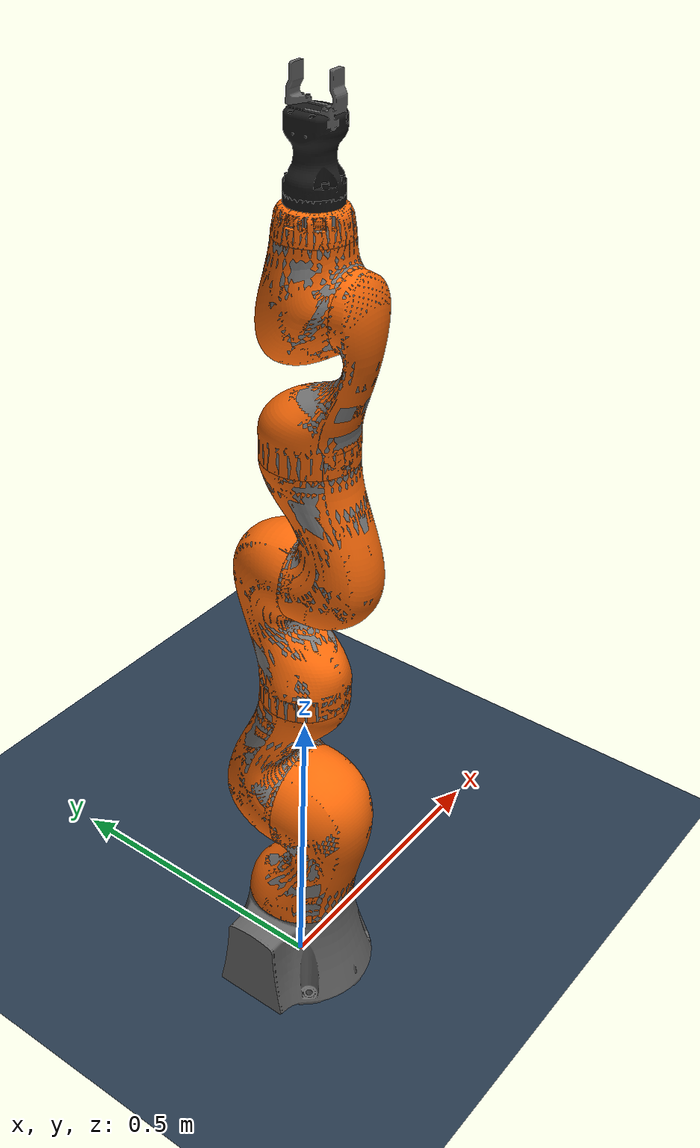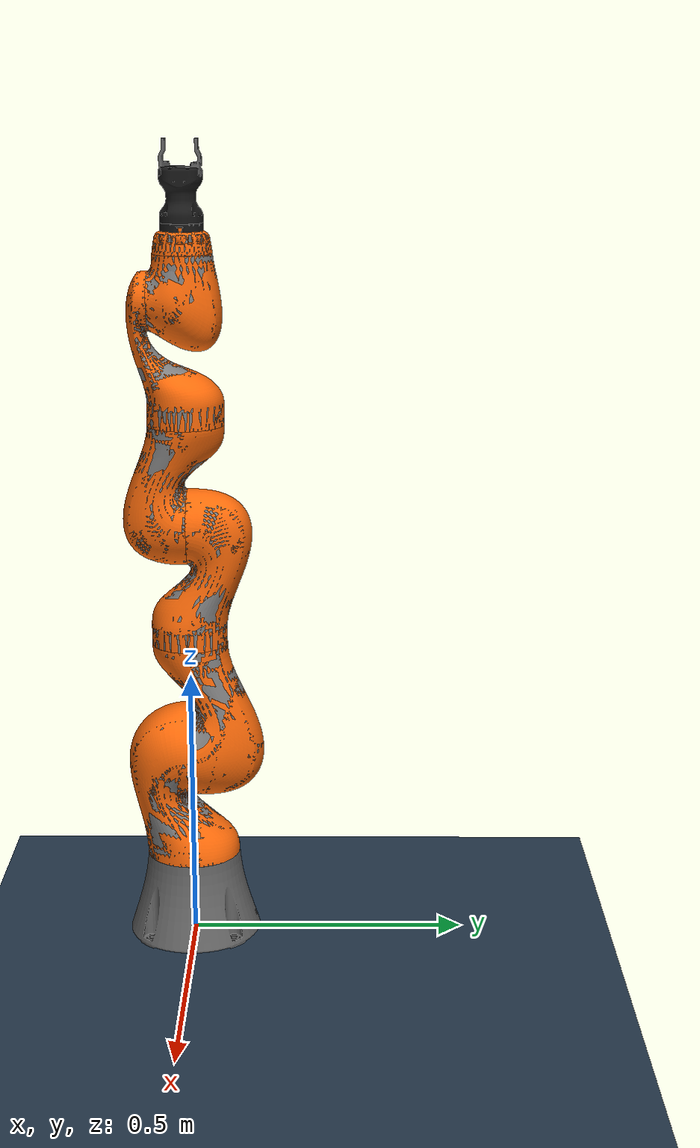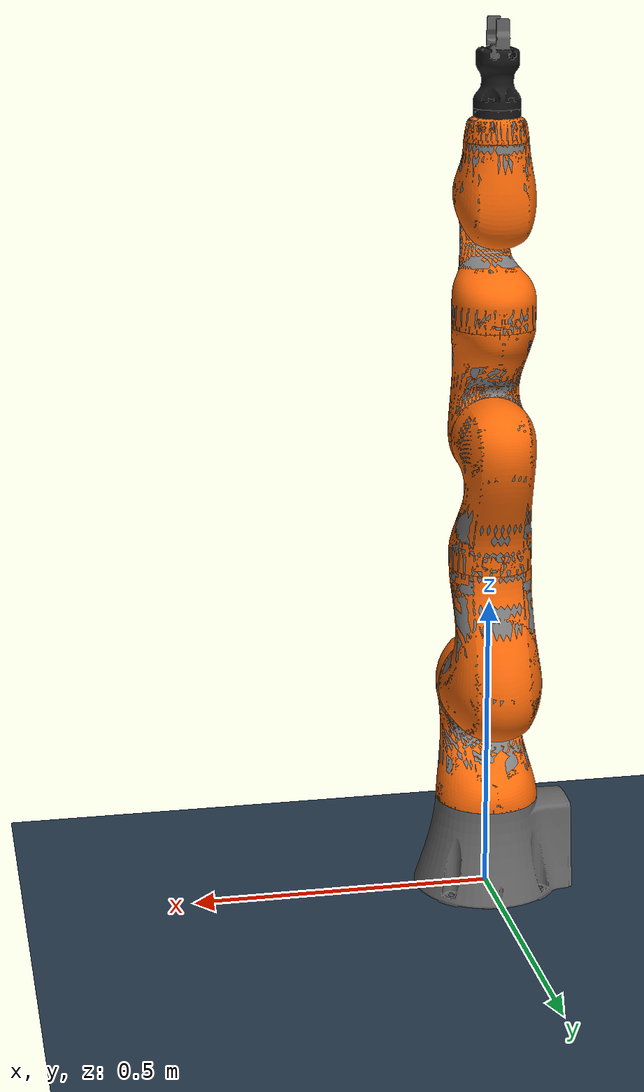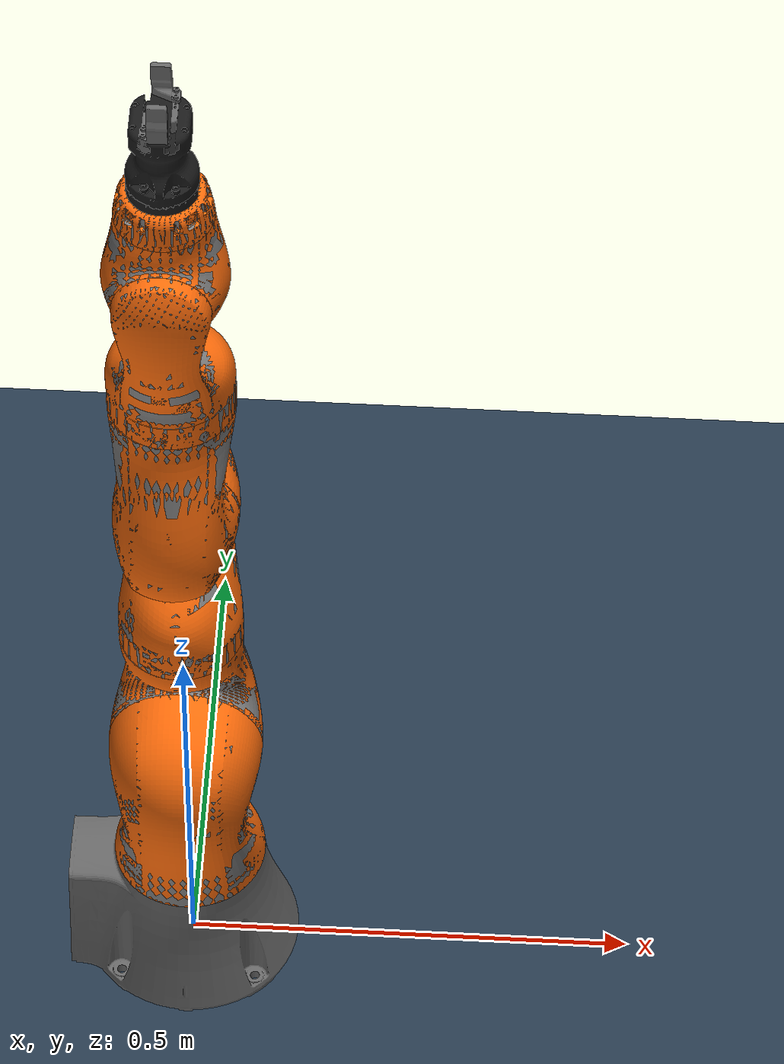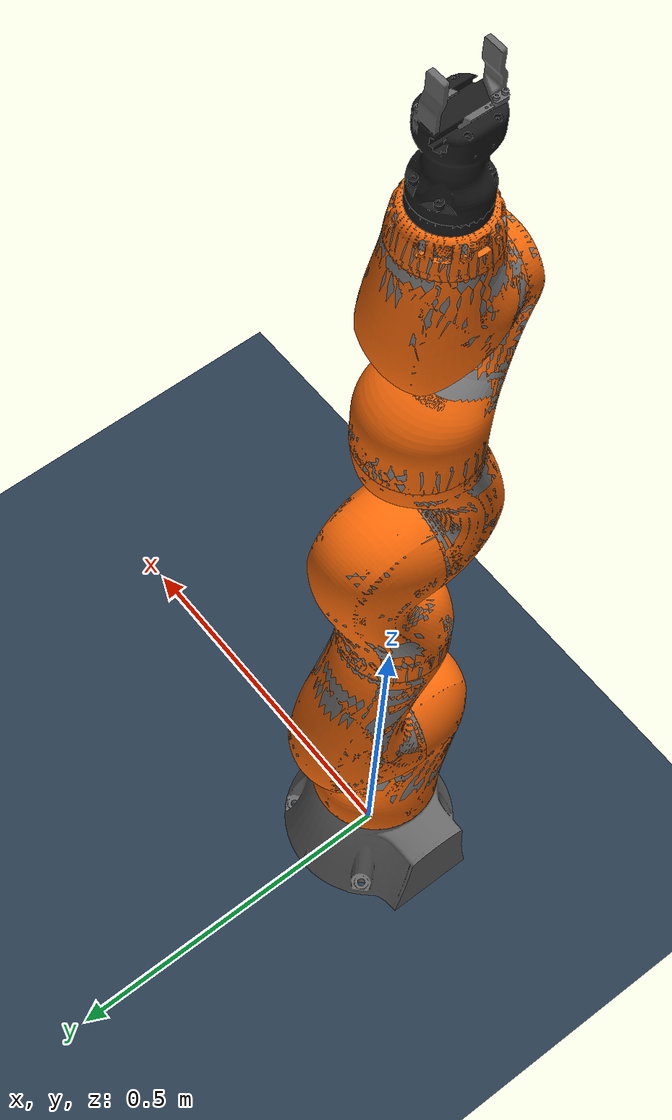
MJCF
<mujoco model="iiwa_gripper">
    <compiler angle="radian" meshdir="" inertiagrouprange="0 0"/>
    <option impratio="20" cone="elliptic" density="1.2" viscosity="0.00002"/>
    <size nconmax="5000" njmax="5000"/>

    <!-- iiwa assets-->
    <include file="assets/assets.xml"/>

    <!-- arena -->
    <include file="../common_arena/simple_plane.xml"/>

    <!-- iiwa body xml-->
    <include file="assets/iiwa14.xml"/>

</mujoco>

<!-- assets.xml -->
<mujocoinclude>
    <asset>
        <mesh name="iiwa_link_0" file="/dataset/meshes/iiwa14/collision/link_0.stl" scale="1 1 1" />
        <mesh name="iiwa_link_1" file="/dataset/meshes/iiwa14/collision/link_1.stl" scale="1 1 1" />
        <mesh name="iiwa_link_2" file="/dataset/meshes/iiwa14/collision/link_2.stl" scale="1 1 1" />
        <mesh name="iiwa_link_3" file="/dataset/meshes/iiwa14/collision/link_3.stl" scale="1 1 1" />
        <mesh name="iiwa_link_4" file="/dataset/meshes/iiwa14/collision/link_4.stl" scale="1 1 1" />
        <mesh name="iiwa_link_5" file="/dataset/meshes/iiwa14/collision/link_5.stl" scale="1 1 1" />
        <mesh name="iiwa_link_6" file="/dataset/meshes/iiwa14/collision/link_6.stl" scale="1 1 1" />
        <mesh name="iiwa_link_7" file="/dataset/meshes/iiwa14/collision/link_7.stl" scale="1 1 1" />
        <mesh name="iiwa_link_0_vis" file="/dataset/meshes/iiwa14/visual/link_0.stl" scale="1 1 1" />
        <mesh name="iiwa_link_1_vis" file="/dataset/meshes/iiwa14/visual/link_1.stl" scale="1 1 1" />
        <mesh name="iiwa_link_2_vis" file="/dataset/meshes/iiwa14/visual/link_2.stl" scale="1 1 1" />
        <mesh name="iiwa_link_3_vis" file="/dataset/meshes/iiwa14/visual/link_3.stl" scale="1 1 1" />
        <mesh name="iiwa_link_4_vis" file="/dataset/meshes/iiwa14/visual/link_4.stl" scale="1 1 1" />
        <mesh name="iiwa_link_5_vis" file="/dataset/meshes/iiwa14/visual/link_5.stl" scale="1 1 1" />
        <mesh name="iiwa_link_6_vis" file="/dataset/meshes/iiwa14/visual/link_6.stl" scale="1 1 1" />
        <mesh name="iiwa_link_7_vis" file="/dataset/meshes/iiwa14/visual/link_7.stl" scale="1 1 1" />

        <mesh name="hande" file="/dataset/meshes/hande/hande.stl" />
        <mesh name="coupler" file="/dataset/meshes/hande/coupler.stl" />
        <mesh name="right_finger" file="/dataset/meshes/hande/finger_1.stl" />
        <mesh name="left_finger" file="/dataset/meshes/hande/finger_2.stl" />
    </asset>
</mujocoinclude>

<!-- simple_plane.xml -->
<mujoco model="empty_arena">
    <asset>
        <texture name="texplane" type="2d" builtin="checker" rgb1=".2 .3 .4" rgb2=".1 0.15 0.2" width="512" height="512"/>
        <material name="MatGnd" reflectance="0.5" texture="texplane" texrepeat="1 1" texuniform="true"/>
        <texture type="skybox" builtin="gradient" rgb1="1 1 1" rgb2=".6 .8 1" width="256" height="256"/>
    </asset>

    <worldbody>
        <light directional="false" diffuse=".8 .8 .8" specular="0.3 0.3 0.3" pos="1  1 3" dir="-1 -1 -3"/>
        <geom name="ground" pos="0 0 0" size="5 5 10" material="MatGnd" type="plane" contype="1" conaffinity="1"/>
        <light diffuse=".8 .8 .8" dir="0 -.15 -1" directional="false" pos="1 1 4.0" specular="0.3 0.3 0.3" castshadow="false"/>
        <light diffuse=".8 .8 .8" dir="0 -.15 -1" directional="false" pos="-3. -3. 4.0" specular="0.3 0.3 0.3" castshadow="false"/>
        <!-- front view -->
        <camera mode="fixed" name="frontview" pos="1.6 0 1.45" quat="0.56 0.43 0.43 0.56"/>
        <!-- bird view -->
        <camera mode="fixed" name="birdview" pos="-0.2 0 3.0" quat="0.7071 0 0 0.7071"/>
        <!-- agent view -->
        <camera mode="fixed" name="agentview" pos="1.0 0 1.75" quat="0.653 0.271 0.271 0.653"/>
    </worldbody>
</mujoco>

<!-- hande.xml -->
<mujocoinclude>

    <body name="hande">
        <geom name="hande_coupler" type="mesh" conaffinity="0" group="1" rgba="0.1 0.1 0.1 1" mesh="coupler" />
        <geom name="hande_base" type="mesh" conaffinity="0" group="1" rgba="0.1 0.1 0.1 1" mesh="hande" />
        <body name="hande_left_finger" pos="0 0 0.099">
            <inertial pos="0.02262 -0.00759 0.00738" quat="0.871952 0.0369732 -0.211073 0.440205" mass="0.03804" diaginertia="1.22763e-05 1.22763e-05 1.22763e-05" />
            <joint name="hande_left_finger_joint" class="hande_left_finger" pos="0 0 0" axis="1 0 0" />
            <geom type="mesh" contype="0" conaffinity="0" group="1" rgba="0.4 0.4 0.4 1" mesh="left_finger" />
        </body>
        <body name="hande_right_finger" pos="0 0 0.099">
            <inertial pos="-0.02262 0.00759 0.00738" quat="0.871952 -0.0369732 0.211073 0.440205" mass="0.03804" diaginertia="1.22763e-05 1.22763e-05 1.22763e-05" />
            <joint name="hande_right_finger_joint" class="hande_right_finger" pos="0 0 0" axis="-1 0 0" />
            <geom type="mesh" contype="0" conaffinity="0" group="1" rgba="0.4 0.4 0.4 1" mesh="right_finger" />
        </body>
    </body>

</mujocoinclude>

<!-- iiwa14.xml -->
<mujocoinclude>
    <option cone="elliptic" impratio="10"/>

    <default>
        <default class="hande">
            <default class="hande_right_finger">
                <joint type="slide" range="0 0.025" actuatorfrcrange="-100 100" />
            </default>
            <default class="hande_left_finger">
                <joint type="slide" range="0 0.025" actuatorfrcrange="-100 100" />
            </default>
        </default>
    </default>

    <visual>
        <global azimuth="120" elevation="-20" />
        <headlight diffuse="0.6 0.6 0.6" specular="0 0 0" />
        <rgba haze="0.15 0.25 0.35 1" />
    </visual>

    <statistic meansize="0.1" extent="1" center="4 0 0" />

    <worldbody>
        <body name="iiwa_world" pos="0 0 0">
            <!-- robot view -->
            <camera mode="fixed" name="iiwa_robotview" pos="1.0 0 0.4" quat="0.653 0.271 0.271 0.653"/>
            <inertial diaginertia="0 0 0" mass="0" pos="0 0 0"/>
            <body name="iiwa_link_0" pos="0 0 0">
                <inertial pos="0 0 0" mass="5" fullinertia="0.05 0.06 0.03 0 0 0" />
                <geom type="mesh" contype="0" conaffinity="0" group="1" mesh="iiwa_link_0_vis" name="iiwa_link_0_visual" rgba="0.4 0.4 0.4 1.0" />
                <geom type="mesh" group="0" mesh="iiwa_link_0" name="iiwa_link_0_collision"/>
                <body name="iiwa_link_1" pos="0 0 0.1575">
                    <inertial pos="0 -0.03 0.12" mass="4" fullinertia="0.1 0.09 0.02 0 0 0" />
                    <joint name="iiwa_joint_1" pos="0 0 0" axis="0 0 1" limited="true" range="-2.9670597283903604 2.9670597283903604" damping="0.5"/>
                    <geom type="mesh" contype="0" conaffinity="0" group="1" mesh="iiwa_link_1_vis" name="iiwa_link_1_visual" rgba="1.0 0.4235294117647059 0.0392156862745098 1.0" />
                    <geom type="mesh" group="0" mesh="iiwa_link_1" name="iiwa_link_1_collision"/>
                    <body name="iiwa_link_2" pos="0 0 0.2025" quat="0 0 0.7071068 0.7071068">
                        <inertial pos="0.0003 0.059 0.042" mass="4" fullinertia="0.05 0.018 0.044 0 0 0" />
                        <joint name="iiwa_joint_2" pos="0 0 0" axis="0 0 1" limited="true" range="-2.0943951023931953 2.0943951023931953" damping="0.5"/>
                        <geom type="mesh" contype="0" conaffinity="0" group="1" mesh="iiwa_link_2_vis" name="iiwa_link_2_visual" rgba="1.0 0.4235294117647059 0.0392156862745098 1.0" />
                        <geom type="mesh" group="0" mesh="iiwa_link_2" name="iiwa_link_2_collision"/>
                        <body name="iiwa_link_3" pos="0 0.2045 0" quat="0 0 0.7071068 0.7071068">
                            <inertial pos="0 0.03 0.13" mass="3" fullinertia="0.08 0.075 0.01 0 0 0" />
                            <joint name="iiwa_joint_3" pos="0 0 0" axis="0 0 1" limited="true" range="-2.9670597283903604 2.9670597283903604" damping="0.5"/>
                            <geom type="mesh" contype="0" conaffinity="0" group="1" mesh="iiwa_link_3_vis" name="iiwa_link_3_visual" rgba="1.0 0.4235294117647059 0.0392156862745098 1.0" />
                            <geom type="mesh" group="0" mesh="iiwa_link_3" name="iiwa_link_3_collision"/>
                            <body name="iiwa_link_4" pos="0 0 0.2155" quat="0.7071068 0.7071068 0 0">
                                <inertial pos="0 0.067 0.034" mass="2.7" fullinertia="0.03 0.01 0.029 0 0 0" />
                                <joint name="iiwa_joint_4" pos="0 0 0" axis="0 0 1" limited="true" range="-2.0943951023931953 2.0943951023931953" damping="0.5"/>
                                <geom type="mesh" contype="0" conaffinity="0" group="1" mesh="iiwa_link_4_vis" name="iiwa_link_4_visual" rgba="1.0 0.4235294117647059 0.0392156862745098 1.0" />
                                <geom type="mesh" group="0" mesh="iiwa_link_4" name="iiwa_link_4_collision"/>
                                <body name="iiwa_link_5" pos="0 0.1845 0" quat="0 0 0.7071068 0.7071068">
                                    <inertial pos="0.0001 0.021 0.076" mass="1.7" fullinertia="0.02 0.018 0.005 0 0 0" />
                                    <joint name="iiwa_joint_5" pos="0 0 0" axis="0 0 1" limited="true" range="-2.9670597283903604 2.9670597283903604" damping="0.5"/>
                                    <geom type="mesh" contype="0" conaffinity="0" group="1" mesh="iiwa_link_5_vis" name="iiwa_link_5_visual" rgba="1.0 0.4235294117647059 0.0392156862745098 1.0" />
                                    <geom type="mesh" group="0" mesh="iiwa_link_5" name="iiwa_link_5_collision"/>
                                    <body name="iiwa_link_6" pos="0 0 0.2155" quat="0.7071068 0.7071068 0 0">
                                        <inertial pos="0 0.0006 0.0004" mass="1.8" fullinertia="0.005 0.0036 0.0047 0 0 0" />
                                        <joint name="iiwa_joint_6" pos="0 0 0" axis="0 0 1" limited="true" range="-2.0943951023931953 2.0943951023931953" damping="0.5"/>
                                        <geom type="mesh" contype="0" conaffinity="0" group="1" mesh="iiwa_link_6_vis" name="iiwa_link_6_visual" rgba="1.0 0.4235294117647059 0.0392156862745098 1.0" />
                                        <geom type="mesh" group="0" mesh="iiwa_link_6" name="iiwa_link_6_collision"/>
                                        <body name="iiwa_link_7" pos="0 0.081 0" quat="0 0 0.7071068 0.7071068">
                                            <inertial pos="0 0 0.02" mass="0.3" fullinertia="0.001 0.001 0.001 0 0 0" />
                                            <joint name="iiwa_joint_7" pos="0 0 0" axis="0 0 1" limited="true" range="-3.0543261909900763 3.0543261909900763" damping="0.5"/>
                                            <geom type="mesh" contype="0" conaffinity="0" group="1" mesh="iiwa_link_7_vis" name="iiwa_link_7_visual" rgba="1.0 0.4235294117647059 0.0392156862745098 1.0" />
                                            <geom type="mesh" group="0" mesh="iiwa_link_7" name="iiwa_link_7_collision"/>
                                            <body name="hand" pos="0 0 0.045" quat="0.7071068 0 0 0.7071068">
                                                <inertial pos="0 0 0" mass="0.5" fullinertia="0.01 0.01 0.01 0.0 0.0 0.0" />
                                                <!-- This camera points out from the eef. -->
                                                <camera mode="fixed" name="iiwa_eye_in_hand" pos="0.05 0 0" fovy="75"/>
                                                <!-- to add gripper -->
                                                <include file="assets/hande.xml"/>
                                            </body>
                                        </body>
                                    </body>
                                </body>
                            </body>
                        </body>
                    </body>
                </body>
            </body>
        </body>
    </worldbody>

    <contact>
        <exclude body1="hande" body2="hande_left_finger" />
        <exclude body1="hande" body2="hande_right_finger" />
    </contact>
    <equality>
        <joint joint1="hande_left_finger_joint" joint2="hande_right_finger_joint" polycoef="0 1 0 0 0" />
    </equality>
    <tendon>
        <fixed name="split">
            <joint joint="hande_left_finger_joint" coef="0.5" />
            <joint joint="hande_right_finger_joint" coef="0.5" />
        </fixed>
    </tendon>
    <actuator>
        <!-- Remap original ctrlrange (0, 0.025) to (0, 255): 0.025 * 100 / 255 = 0.009803922 -->
        <!-- https://mujoco.readthedocs.io/en/stable/XMLreference.html#actuator -->
        <!-- scalar_force = gain_term * (act or ctrl) + bias_term -->
        <!-- gain_term = gain_prm[0] + gain_prm[1]*length + gain_prm[2]*velocity -->
        <!-- bias_term = biasprm[0] + biasprm[1]*length + biasprm[2]*velocity -->
        <general name="hande_fingers_actuator" class="hande" tendon="split" ctrlrange="0 255"
        forcerange="-200 200" gaintype="affine" biastype="affine" gainprm="0.00980392"
        biasprm="0 -100 -10" />
    </actuator>

    <actuator>
        <!-- Physical limits of the actuator. -->
        <motor ctrllimited="true" ctrlrange="-170.0 170.0" joint="iiwa_joint_1" name="iiwa_torq_j1"/>
        <motor ctrllimited="true" ctrlrange="-120.0 120.0" joint="iiwa_joint_2" name="iiwa_torq_j2"/>
        <motor ctrllimited="true" ctrlrange="-170.0 170.0" joint="iiwa_joint_3" name="iiwa_torq_j3"/>
        <motor ctrllimited="true" ctrlrange="-120.0 120.0" joint="iiwa_joint_4" name="iiwa_torq_j4"/>
        <motor ctrllimited="true" ctrlrange="-170.0 170.0" joint="iiwa_joint_5" name="iiwa_torq_j5"/>
        <motor ctrllimited="true" ctrlrange="-120.0 120.0" joint="iiwa_joint_6" name="iiwa_torq_j6"/>
        <motor ctrllimited="true" ctrlrange="-170.0 170.0" joint="iiwa_joint_7" name="iiwa_torq_j7"/>
    </actuator>

</mujocoinclude>
